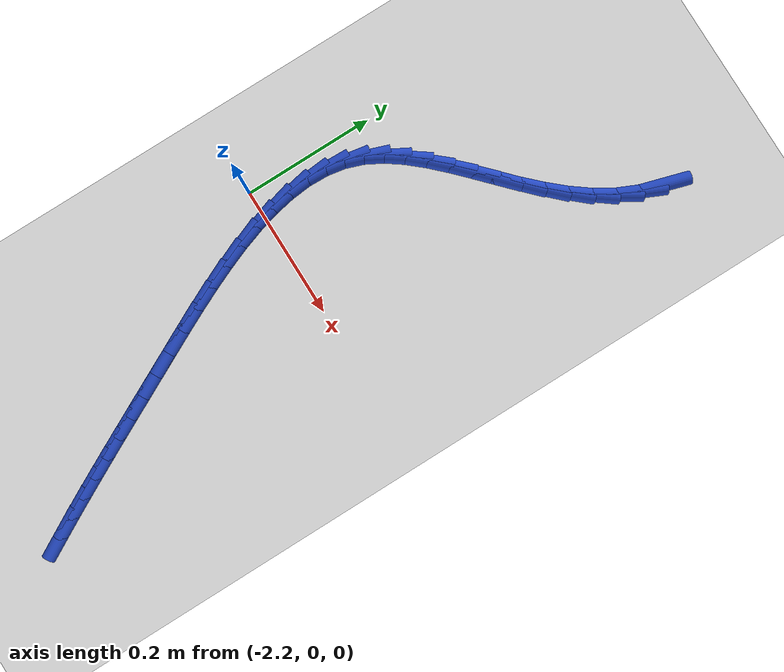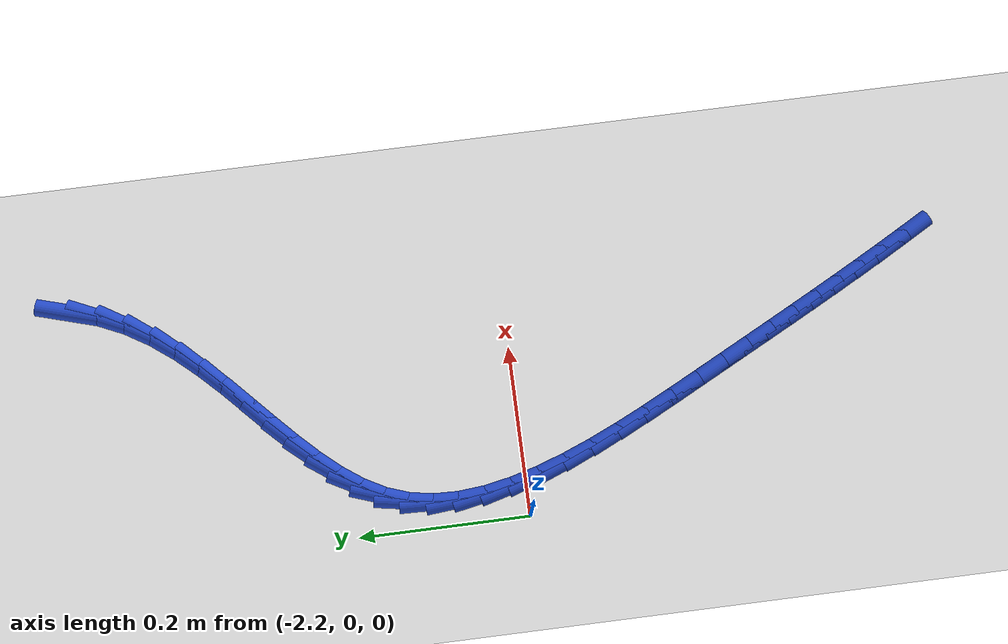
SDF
<sdf version="1.6">
 <world name="default">
  <model name="ground_plane">
   <static>1</static>
   <link name="link">
    <collision name="collision">
     <geometry><plane><normal>0 0 1</normal><size>100 100</size></plane></geometry>
     <surface><friction><ode><mu>100</mu><mu2>50</mu2></ode></friction></surface>
    </collision>
    <visual name="visual">
     <cast_shadows>0</cast_shadows>
     <geometry><plane><normal>0 0 1</normal><size>100 100</size></plane></geometry>
     <material>
      <script><uri>file://media/materials/scripts/gazebo.material</uri><name>Gazebo/WhiteGlow</name></script>
     </material>
    </visual>
   </link>
  </model>
  <model name="line">
   <link name="link_89">
    <pose>-1.8955979292691876 0.5047653939707993 0.01 0 1.57 1.2822081229787055</pose>
    <collision name="collision">
     <geometry><cylinder><radius>0.01</radius><length>0.08</length></cylinder></geometry>
    </collision>
    <visual name="visual">
     <material>
      <script><name>Gazebo/Blue</name><uri>file://media/materials/scripts/gazebo.material</uri></script>
     </material>
     <geometry><cylinder><radius>0.01</radius><length>0.08</length></cylinder></geometry>
    </visual>
   </link>
   <link name="link_90">
    <pose>-1.905603953993961 0.4710609936429461 0.01 0 1.57 1.142867958403536</pose>
    <collision name="collision">
     <geometry><cylinder><radius>0.01</radius><length>0.08</length></cylinder></geometry>
    </collision>
    <visual name="visual">
     <material>
      <script><name>Gazebo/Blue</name><uri>file://media/materials/scripts/gazebo.material</uri></script>
     </material>
     <geometry><cylinder><radius>0.01</radius><length>0.08</length></cylinder></geometry>
    </visual>
   </link>
   <link name="link_91">
    <pose>-1.919885420014957 0.4397499567212314 0.01 0 1.57 1.0205627818095753</pose>
    <collision name="collision">
     <geometry><cylinder><radius>0.01</radius><length>0.08</length></cylinder></geometry>
    </collision>
    <visual name="visual">
     <material>
      <script><name>Gazebo/Blue</name><uri>file://media/materials/scripts/gazebo.material</uri></script>
     </material>
     <geometry><cylinder><radius>0.01</radius><length>0.08</length></cylinder></geometry>
    </visual>
   </link>
   <link name="link_92">
    <pose>-1.9377909327434706 0.41056062433583795 0.01 0 1.57 0.9213129260969202</pose>
    <collision name="collision">
     <geometry><cylinder><radius>0.01</radius><length>0.08</length></cylinder></geometry>
    </collision>
    <visual name="visual">
     <material>
      <script><name>Gazebo/Blue</name><uri>file://media/materials/scripts/gazebo.material</uri></script>
     </material>
     <geometry><cylinder><radius>0.01</radius><length>0.08</length></cylinder></geometry>
    </visual>
   </link>
   <link name="link_93">
    <pose>-1.958590063189166 0.383171348492671 0.01 0 1.57 0.8456557150757422</pose>
    <collision name="collision">
     <geometry><cylinder><radius>0.01</radius><length>0.08</length></cylinder></geometry>
    </collision>
    <visual name="visual">
     <material>
      <script><name>Gazebo/Blue</name><uri>file://media/materials/scripts/gazebo.material</uri></script>
     </material>
     <geometry><cylinder><radius>0.01</radius><length>0.08</length></cylinder></geometry>
    </visual>
   </link>
   <link name="link_94">
    <pose>-1.9815523823617107 0.35726048119763476 0.01 0 1.57 0.79270289167268</pose>
    <collision name="collision">
     <geometry><cylinder><radius>0.01</radius><length>0.08</length></cylinder></geometry>
    </collision>
    <visual name="visual">
     <material>
      <script><name>Gazebo/Blue</name><uri>file://media/materials/scripts/gazebo.material</uri></script>
     </material>
     <geometry><cylinder><radius>0.01</radius><length>0.08</length></cylinder></geometry>
    </visual>
   </link>
   <link name="link_95">
    <pose>-2.0059474612707713 0.33250637445663356 0.01 0 1.57 0.7613615465399953</pose>
    <collision name="collision">
     <geometry><cylinder><radius>0.01</radius><length>0.08</length></cylinder></geometry>
    </collision>
    <visual name="visual">
     <material>
      <script><name>Gazebo/Blue</name><uri>file://media/materials/scripts/gazebo.material</uri></script>
     </material>
     <geometry><cylinder><radius>0.01</radius><length>0.08</length></cylinder></geometry>
    </visual>
   </link>
   <link name="link_96">
    <pose>-2.031044870926013 0.3085873802755726 0.01 0 1.57 0.7510890478157612</pose>
    <collision name="collision">
     <geometry><cylinder><radius>0.01</radius><length>0.08</length></cylinder></geometry>
    </collision>
    <visual name="visual">
     <material>
      <script><name>Gazebo/Blue</name><uri>file://media/materials/scripts/gazebo.material</uri></script>
     </material>
     <geometry><cylinder><radius>0.01</radius><length>0.08</length></cylinder></geometry>
    </visual>
   </link>
   <link name="link_97">
    <pose>-2.056114182337105 0.28518185066035645 0.01 0 1.57 0.7623179334484675</pose>
    <collision name="collision">
     <geometry><cylinder><radius>0.01</radius><length>0.08</length></cylinder></geometry>
    </collision>
    <visual name="visual">
     <material>
      <script><name>Gazebo/Blue</name><uri>file://media/materials/scripts/gazebo.material</uri></script>
     </material>
     <geometry><cylinder><radius>0.01</radius><length>0.08</length></cylinder></geometry>
    </visual>
   </link>
   <link name="link_98">
    <pose>-2.080424966513712 0.26196813761688925 0.01 0 1.57 0.7966987178680665</pose>
    <collision name="collision">
     <geometry><cylinder><radius>0.01</radius><length>0.08</length></cylinder></geometry>
    </collision>
    <visual name="visual">
     <material>
      <script><name>Gazebo/Blue</name><uri>file://media/materials/scripts/gazebo.material</uri></script>
     </material>
     <geometry><cylinder><radius>0.01</radius><length>0.08</length></cylinder></geometry>
    </visual>
   </link>
   <link name="link_99">
    <pose>-2.1032467944655013 0.2386245931510762 0.01 0 1.57 0.857183684999334</pose>
    <collision name="collision">
     <geometry><cylinder><radius>0.01</radius><length>0.08</length></cylinder></geometry>
    </collision>
    <visual name="visual">
     <material>
      <script><name>Gazebo/Blue</name><uri>file://media/materials/scripts/gazebo.material</uri></script>
     </material>
     <geometry><cylinder><radius>0.01</radius><length>0.08</length></cylinder></geometry>
    </visual>
   </link>
   <link name="link_100">
    <pose>-2.12384923720214 0.21482956926882188 0.01 0 1.57 0.9477508033315064</pose>
    <collision name="collision">
     <geometry><cylinder><radius>0.01</radius><length>0.08</length></cylinder></geometry>
    </collision>
    <visual name="visual">
     <material>
      <script><name>Gazebo/Blue</name><uri>file://media/materials/scripts/gazebo.material</uri></script>
     </material>
     <geometry><cylinder><radius>0.01</radius><length>0.08</length></cylinder></geometry>
    </visual>
   </link>
   <link name="link_101">
    <pose>-2.1415018657332934 0.19026141797603036 0.01 0 1.57 1.0722179773470655</pose>
    <collision name="collision">
     <geometry><cylinder><radius>0.01</radius><length>0.08</length></cylinder></geometry>
    </collision>
    <visual name="visual">
     <material>
      <script><name>Gazebo/Blue</name><uri>file://media/materials/scripts/gazebo.material</uri></script>
     </material>
     <geometry><cylinder><radius>0.01</radius><length>0.08</length></cylinder></geometry>
    </visual>
   </link>
   <link name="link_102">
    <pose>-2.1554742510686298 0.164598491278607 0.01 0 1.57 1.2304369181582544</pose>
    <collision name="collision">
     <geometry><cylinder><radius>0.01</radius><length>0.08</length></cylinder></geometry>
    </collision>
    <visual name="visual">
     <material>
      <script><name>Gazebo/Blue</name><uri>file://media/materials/scripts/gazebo.material</uri></script>
     </material>
     <geometry><cylinder><radius>0.01</radius><length>0.08</length></cylinder></geometry>
    </visual>
   </link>
   <link name="link_103">
    <pose>-2.16506029532781 0.13753007546291435 0.01 0 1.57 1.3954750447898387</pose>
    <collision name="collision">
     <geometry><cylinder><radius>0.01</radius><length>0.08</length></cylinder></geometry>
    </collision>
    <visual name="visual">
     <material>
      <script><name>Gazebo/Blue</name><uri>file://media/materials/scripts/gazebo.material</uri></script>
     </material>
     <geometry><cylinder><radius>0.01</radius><length>0.08</length></cylinder></geometry>
    </visual>
   </link>
   <link name="link_104">
    <pose>-2.1701145690969694 0.1089974184503278 0.01 0 1.57 1.5393228281891222</pose>
    <collision name="collision">
     <geometry><cylinder><radius>0.01</radius><length>0.08</length></cylinder></geometry>
    </collision>
    <visual name="visual">
     <material>
      <script><name>Gazebo/Blue</name><uri>file://media/materials/scripts/gazebo.material</uri></script>
     </material>
     <geometry><cylinder><radius>0.01</radius><length>0.08</length></cylinder></geometry>
    </visual>
   </link>
   <link name="link_105">
    <pose>-2.1710528970180785 0.07919399295820238 0.01 0 1.57 -1.4823535814709947</pose>
    <collision name="collision">
     <geometry><cylinder><radius>0.01</radius><length>0.08</length></cylinder></geometry>
    </collision>
    <visual name="visual">
     <material>
      <script><name>Gazebo/Blue</name><uri>file://media/materials/scripts/gazebo.material</uri></script>
     </material>
     <geometry><cylinder><radius>0.01</radius><length>0.08</length></cylinder></geometry>
    </visual>
   </link>
   <link name="link_106">
    <pose>-2.168315551961023 0.04832425861656228 0.01 0 1.57 -1.3847460264469633</pose>
    <collision name="collision">
     <geometry><cylinder><radius>0.01</radius><length>0.08</length></cylinder></geometry>
    </collision>
    <visual name="visual">
     <material>
      <script><name>Gazebo/Blue</name><uri>file://media/materials/scripts/gazebo.material</uri></script>
     </material>
     <geometry><cylinder><radius>0.01</radius><length>0.08</length></cylinder></geometry>
    </visual>
   </link>
   <link name="link_107">
    <pose>-2.162342806795688 0.016592675055433742 0.01 0 1.57 -1.3064270676173055</pose>
    <collision name="collision">
     <geometry><cylinder><radius>0.01</radius><length>0.08</length></cylinder></geometry>
    </collision>
    <visual name="visual">
     <material>
      <script><name>Gazebo/Blue</name><uri>file://media/materials/scripts/gazebo.material</uri></script>
     </material>
     <geometry><cylinder><radius>0.01</radius><length>0.08</length></cylinder></geometry>
    </visual>
   </link>
   <link name="link_108">
    <pose>-2.1535749343919575 -0.015796298095159134 0.01 0 1.57 -1.2442461310701707</pose>
    <collision name="collision">
     <geometry><cylinder><radius>0.01</radius><length>0.08</length></cylinder></geometry>
    </collision>
    <visual name="visual">
     <material>
      <script><name>Gazebo/Blue</name><uri>file://media/materials/scripts/gazebo.material</uri></script>
     </material>
     <geometry><cylinder><radius>0.01</radius><length>0.08</length></cylinder></geometry>
    </visual>
   </link>
   <link name="link_109">
    <pose>-2.1424522076197174 -0.048638201205191536 0.01 0 1.57 -1.195480858925687</pose>
    <collision name="collision">
     <geometry><cylinder><radius>0.01</radius><length>0.08</length></cylinder></geometry>
    </collision>
    <visual name="visual">
     <material>
      <script><name>Gazebo/Blue</name><uri>file://media/materials/scripts/gazebo.material</uri></script>
     </material>
     <geometry><cylinder><radius>0.01</radius><length>0.08</length></cylinder></geometry>
    </visual>
   </link>
   <link name="link_110">
    <pose>-2.129414899348852 -0.08172857464463862 0.01 0 1.57 -1.1579977750220605</pose>
    <collision name="collision">
     <geometry><cylinder><radius>0.01</radius><length>0.08</length></cylinder></geometry>
    </collision>
    <visual name="visual">
     <material>
      <script><name>Gazebo/Blue</name><uri>file://media/materials/scripts/gazebo.material</uri></script>
     </material>
     <geometry><cylinder><radius>0.01</radius><length>0.08</length></cylinder></geometry>
    </visual>
   </link>
   <link name="link_111">
    <pose>-2.1149032824492457 -0.11486295878347551 0.01 0 1.57 -1.1302461986490695</pose>
    <collision name="collision">
     <geometry><cylinder><radius>0.01</radius><length>0.08</length></cylinder></geometry>
    </collision>
    <visual name="visual">
     <material>
      <script><name>Gazebo/Blue</name><uri>file://media/materials/scripts/gazebo.material</uri></script>
     </material>
     <geometry><cylinder><radius>0.01</radius><length>0.08</length></cylinder></geometry>
    </visual>
   </link>
   <link name="link_112">
    <pose>-2.0993576297907848 -0.14783689399167824 0.01 0 1.57 -1.1112072725204845</pose>
    <collision name="collision">
     <geometry><cylinder><radius>0.01</radius><length>0.08</length></cylinder></geometry>
    </collision>
    <visual name="visual">
     <material>
      <script><name>Gazebo/Blue</name><uri>file://media/materials/scripts/gazebo.material</uri></script>
     </material>
     <geometry><cylinder><radius>0.01</radius><length>0.08</length></cylinder></geometry>
    </visual>
   </link>
   <link name="link_113">
    <pose>-2.0832182142433533 -0.18044592063922044 0.01 0 1.57 -1.1003535309350376</pose>
    <collision name="collision">
     <geometry><cylinder><radius>0.01</radius><length>0.08</length></cylinder></geometry>
    </collision>
    <visual name="visual">
     <material>
      <script><name>Gazebo/Blue</name><uri>file://media/materials/scripts/gazebo.material</uri></script>
     </material>
     <geometry><cylinder><radius>0.01</radius><length>0.08</length></cylinder></geometry>
    </visual>
   </link>
   <link name="link_114">
    <pose>-2.066925308676836 -0.21248557909607796 0.01 0 1.57 -1.097377378969161</pose>
    <collision name="collision">
     <geometry><cylinder><radius>0.01</radius><length>0.08</length></cylinder></geometry>
    </collision>
    <visual name="visual">
     <material>
      <script><name>Gazebo/Blue</name><uri>file://media/materials/scripts/gazebo.material</uri></script>
     </material>
     <geometry><cylinder><radius>0.01</radius><length>0.08</length></cylinder></geometry>
    </visual>
   </link>
   <link name="link_115">
    <pose>-2.0509040642465957 -0.2437603026720742 0.01 0 1.57 -1.0976696964758197</pose>
    <collision name="collision">
     <geometry><cylinder><radius>0.01</radius><length>0.08</length></cylinder></geometry>
    </collision>
    <visual name="visual">
     <material>
      <script><name>Gazebo/Blue</name><uri>file://media/materials/scripts/gazebo.material</uri></script>
     </material>
     <geometry><cylinder><radius>0.01</radius><length>0.08</length></cylinder></geometry>
    </visual>
   </link>
   <link name="link_116">
    <pose>-2.0353026655322317 -0.2742374061475569 0.01 0 1.57 -1.0969643076780304</pose>
    <collision name="collision">
     <geometry><cylinder><radius>0.01</radius><length>0.08</length></cylinder></geometry>
    </collision>
    <visual name="visual">
     <material>
      <script><name>Gazebo/Blue</name><uri>file://media/materials/scripts/gazebo.material</uri></script>
     </material>
     <geometry><cylinder><radius>0.01</radius><length>0.08</length></cylinder></geometry>
    </visual>
   </link>
   <link name="link_117">
    <pose>-2.020026760759379 -0.30402683767977173 0.01 0 1.57 -1.0950464382842608</pose>
    <collision name="collision">
     <geometry><cylinder><radius>0.01</radius><length>0.08</length></cylinder></geometry>
    </collision>
    <visual name="visual">
     <material>
      <script><name>Gazebo/Blue</name><uri>file://media/materials/scripts/gazebo.material</uri></script>
     </material>
     <geometry><cylinder><radius>0.01</radius><length>0.08</length></cylinder></geometry>
    </visual>
   </link>
   <link name="link_118">
    <pose>-2.0049738005436644 -0.3332433663642654 0.01 0 1.57 -1.091873922326238</pose>
    <collision name="collision">
     <geometry><cylinder><radius>0.01</radius><length>0.08</length></cylinder></geometry>
    </collision>
    <visual name="visual">
     <material>
      <script><name>Gazebo/Blue</name><uri>file://media/materials/scripts/gazebo.material</uri></script>
     </material>
     <geometry><cylinder><radius>0.01</radius><length>0.08</length></cylinder></geometry>
    </visual>
   </link>
   <link name="link_119">
    <pose>-1.9900412355007133 -0.36200176129658523 0.01 0 1.57 -1.0874368301967487</pose>
    <collision name="collision">
     <geometry><cylinder><radius>0.01</radius><length>0.08</length></cylinder></geometry>
    </collision>
    <visual name="visual">
     <material>
      <script><name>Gazebo/Blue</name><uri>file://media/materials/scripts/gazebo.material</uri></script>
     </material>
     <geometry><cylinder><radius>0.01</radius><length>0.08</length></cylinder></geometry>
    </visual>
   </link>
   <link name="link_120">
    <pose>-1.9751265162461529 -0.3904167915722766 0.01 0 1.57 -1.0817604122533455</pose>
    <collision name="collision">
     <geometry><cylinder><radius>0.01</radius><length>0.08</length></cylinder></geometry>
    </collision>
    <visual name="visual">
     <material>
      <script><name>Gazebo/Blue</name><uri>file://media/materials/scripts/gazebo.material</uri></script>
     </material>
     <geometry><cylinder><radius>0.01</radius><length>0.08</length></cylinder></geometry>
    </visual>
   </link>
   <link name="link_121">
    <pose>-1.9601270933956088 -0.4186032262868868 0.01 0 1.57 -1.0749058318247162</pose>
    <collision name="collision">
     <geometry><cylinder><radius>0.01</radius><length>0.08</length></cylinder></geometry>
    </collision>
    <visual name="visual">
     <material>
      <script><name>Gazebo/Blue</name><uri>file://media/materials/scripts/gazebo.material</uri></script>
     </material>
     <geometry><cylinder><radius>0.01</radius><length>0.08</length></cylinder></geometry>
    </visual>
   </link>
   <link name="link_122">
    <pose>-1.9449404175647076 -0.4466758345359626 0.01 0 1.57 -1.0669684337293448</pose>
    <collision name="collision">
     <geometry><cylinder><radius>0.01</radius><length>0.08</length></cylinder></geometry>
    </collision>
    <visual name="visual">
     <material>
      <script><name>Gazebo/Blue</name><uri>file://media/materials/scripts/gazebo.material</uri></script>
     </material>
     <geometry><cylinder><radius>0.01</radius><length>0.08</length></cylinder></geometry>
    </visual>
   </link>
   <link name="link_123">
    <pose>-1.9294639393690753 -0.4747493854150503 0.01 0 1.57 -1.0580446453598613</pose>
    <collision name="collision">
     <geometry><cylinder><radius>0.01</radius><length>0.08</length></cylinder></geometry>
    </collision>
    <visual name="visual">
     <material>
      <script><name>Gazebo/Blue</name><uri>file://media/materials/scripts/gazebo.material</uri></script>
     </material>
     <geometry><cylinder><radius>0.01</radius><length>0.08</length></cylinder></geometry>
    </visual>
   </link>
  </model>
 </world>
</sdf>
